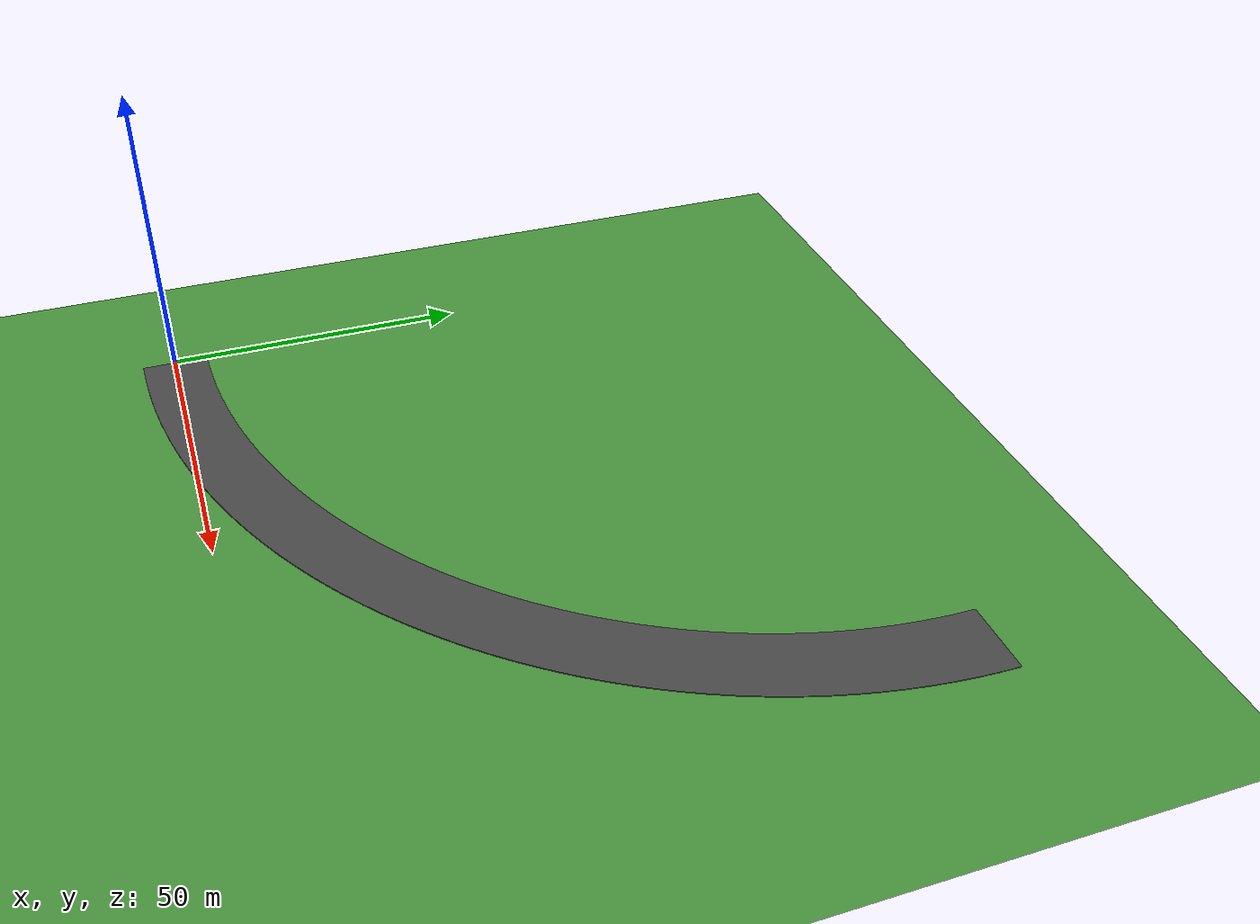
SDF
<?xml version="1.0" ?>
<sdf version='1.5'>
    <world name='default'>
        <gui>
            <camera name="user_camera">
                <pose>1.953330 -2.960521 2.117045 0 0.411456 1.892190</pose>
            </camera>
        </gui>

        <light name='sundir' type='directional'>
            <cast_shadows>1</cast_shadows>
            <pose>0 0 10 0 -0 0</pose>
            <diffuse>1.0 0.95 0.8 1</diffuse>
            <specular>0.7 0.7 0.7 1</specular>
            <attenuation>
                <range>1000</range>
                <constant>0.9</constant>
                <linear>0.01</linear>
                <quadratic>0.001</quadratic>
            </attenuation>
            <direction>-0.3 0.4 -1.0</direction>
        </light>

        <physics type="ode" name="r_500" default="true">
            <max_step_size>0.001</max_step_size>
            <real_time_factor>1.0</real_time_factor>
            <real_time_update_rate>1000.0</real_time_update_rate>
            <gravity>0 0 -9.8</gravity>
        </physics>

        <scene>
            <sky>
                <clouds>
                    <speed>12</speed>
                </clouds>
            </sky>

            <grid>true</grid>
        </scene>
        <model name="grassland">
            <link name="body">
                <collision name="geom">
                    <geometry>
                        <plane>
                            <normal>0 0 1</normal>
                        </plane>
                    </geometry>
                    <surface>
                        <friction>
                            <ode>
                                <mu>100</mu>
                                <mu2>50</mu2>
                            </ode>
                        </friction>
                    </surface>
                </collision>
                <visual name='visual'>
                    <cast_shadows>0</cast_shadows>
                    <geometry>
                        <plane>
                            <normal>0 0 1</normal>
                            <size>500 500</size>
                        </plane>
                    </geometry>
                    <material>
                        <script>
                            <uri>file://media/materials/scripts/gazebo.material</uri>
                            <name>Gazebo/Grass</name>
                        </script>
                    </material>
                </visual>
            </link>
            <static>true</static>
        </model>
        <model name="DS_Left_Curved_Road_0">
            <static>1</static>
            <pose>52.75 47.25 -0.08 0 -0 0</pose>
            <link name='link'>
                <inertial>
                    <pose>0 0 0 0 -0 0</pose>
                    <mass>1</mass>
                    <inertia>
                        <ixx>1</ixx>
                        <iyy>1</iyy>
                        <izz>1</izz>
                        <ixy>0</ixy>
                        <ixz>0</ixz>
                        <iyz>0</iyz>
                    </inertia>
                </inertial>
                <collision name='collision'>
                    <geometry>
                        <mesh>
                            <uri>model://ds_curved_road_100m/meshes/curved_road_100m.dae</uri>
                        </mesh>
                    </geometry>
                    <max_contacts>10</max_contacts>
                    <surface>
                        <contact>
                            <ode/>
                        </contact>
                        <bounce/>
                        <friction>
                            <torsional>
                                <ode/>
                            </torsional>
                            <ode/>
                        </friction>
                    </surface>
                </collision>
                <visual name='visual'>
                    <geometry>
                        <mesh>
                            <uri>model://ds_curved_road_100m/meshes/curved_road_100m.dae</uri>
                        </mesh>
                    </geometry>
                    <material>
                        <script>
                            <uri>file://media/materials/scripts/ds_sim.material</uri>
                            <name>DSSim/Road</name>
                        </script>
                    </material>
                </visual>
                <self_collide>0</self_collide>
                <enable_wind>0</enable_wind>
                <kinematic>0</kinematic>
            </link>
        </model>
    </world>
</sdf>
